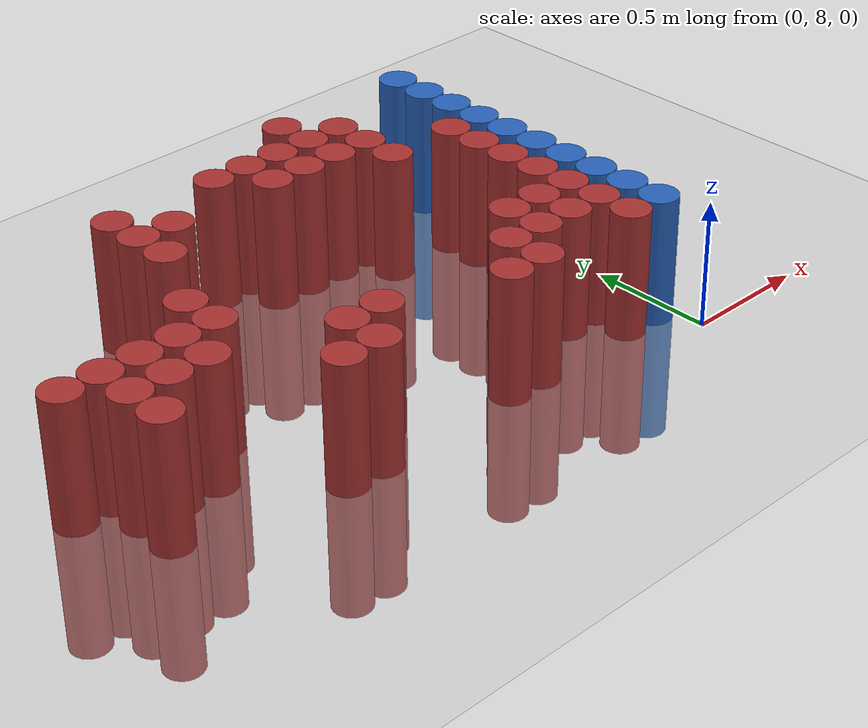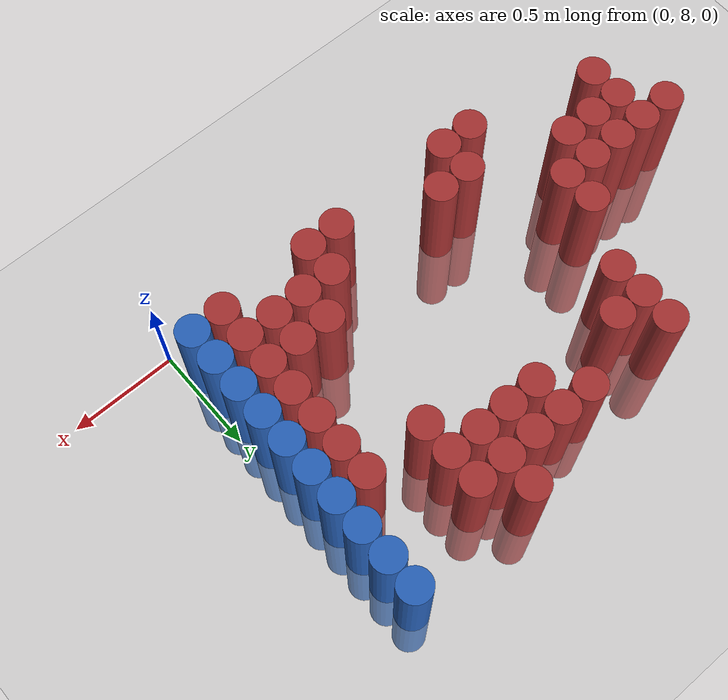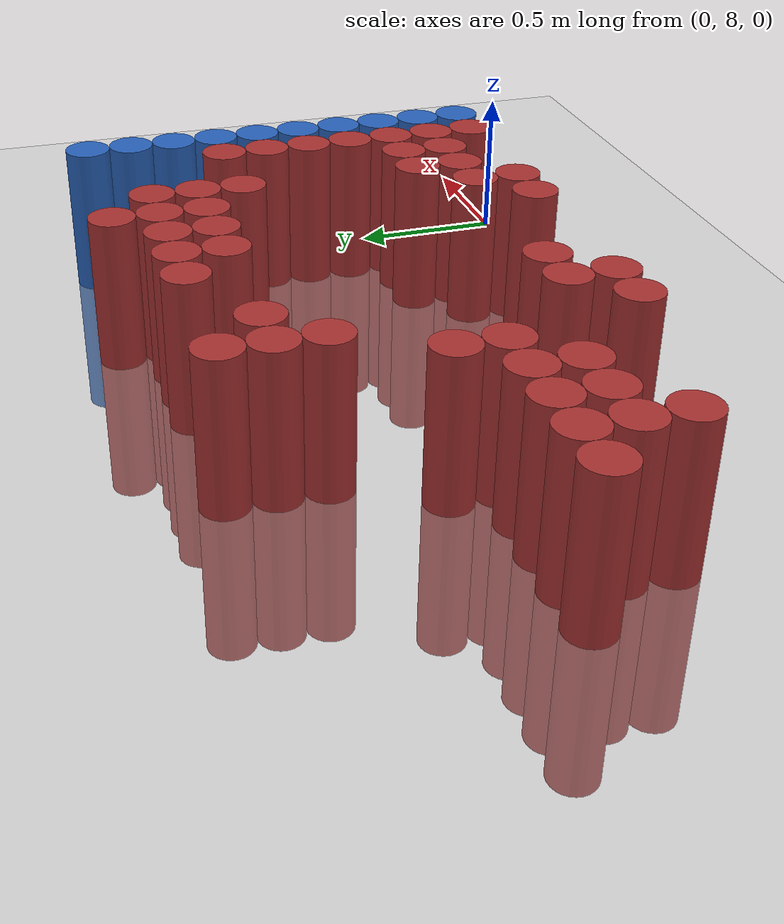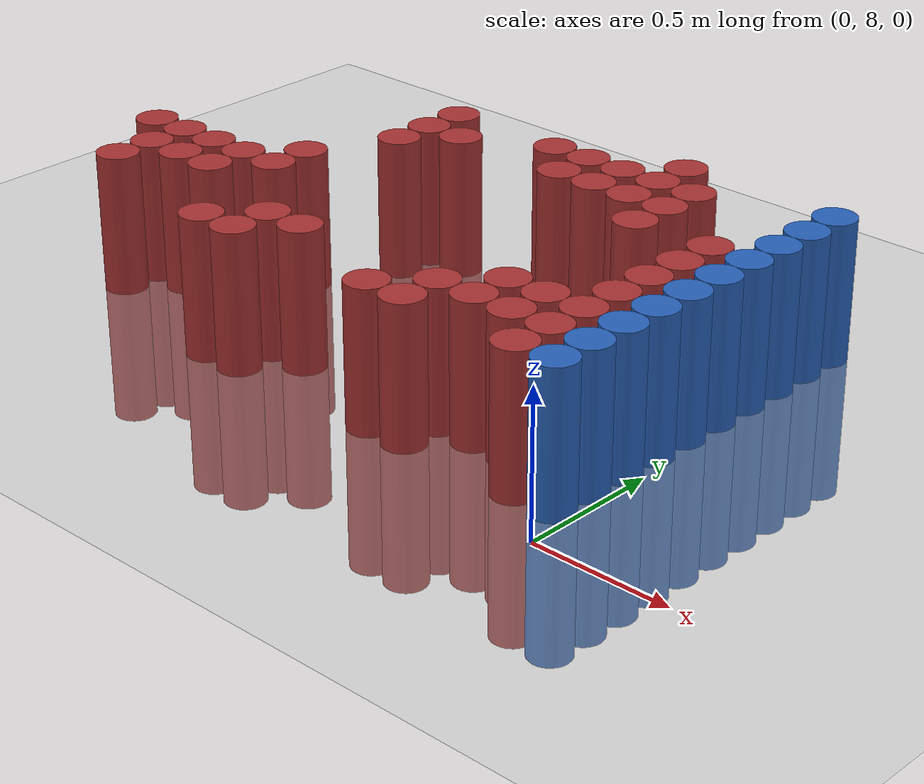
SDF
<sdf version="1.6">
 <world name="default">
  <model name="ground_plane">
   <static>1</static>
   <link name="link">
    <collision name="collision">
     <geometry><plane><normal>0 0 1</normal><size>100 100</size></plane></geometry>
     <surface><friction><ode><mu>100</mu><mu2>50</mu2></ode></friction></surface>
    </collision>
    <visual name="visual">
     <cast_shadows>0</cast_shadows>
     <geometry><plane><normal>0 0 1</normal><size>100 100</size></plane></geometry>
     <material>
      <script><uri>file://media/materials/scripts/gazebo.material</uri><name>Gazebo/Grey</name></script>
     </material>
    </visual>
   </link>
  </model>
  <model name="unit_cylinder_159">
   <static>1</static>
   <pose>-2.325000 8.625000 0.000000 0.000000 0.000000 0.000000</pose>
   <link name="link">
    <inertial>
     <mass>1</mass>
     <inertia><ixx>0.145833</ixx><ixy>0</ixy><ixz>0</ixz><iyy>0.145833</iyy><iyz>0</iyz><izz>0.125</izz></inertia>
    </inertial>
    <collision name="collision">
     <geometry><cylinder><radius>0.075000</radius><length>1</length></cylinder></geometry>
    </collision>
    <visual name="visual">
     <geometry><cylinder><radius>0.075000</radius><length>1</length></cylinder></geometry>
     <material>
      <ambient>0.648000 0.192000 0.192000 1</ambient>
      <diffuse>0.648000 0.192000 0.192000 1</diffuse>
     </material>
     <material>
      <script><name>Gazebo/Grey</name><uri>file://media/materials/scripts/gazebo.material</uri></script>
     </material>
    </visual>
   </link>
  </model>
  <model name="unit_cylinder_162">
   <static>1</static>
   <pose>-2.175000 8.325000 0.000000 0.000000 0.000000 0.000000</pose>
   <link name="link">
    <inertial>
     <mass>1</mass>
     <inertia><ixx>0.145833</ixx><ixy>0</ixy><ixz>0</ixz><iyy>0.145833</iyy><iyz>0</iyz><izz>0.125</izz></inertia>
    </inertial>
    <collision name="collision">
     <geometry><cylinder><radius>0.075000</radius><length>1</length></cylinder></geometry>
    </collision>
    <visual name="visual">
     <geometry><cylinder><radius>0.075000</radius><length>1</length></cylinder></geometry>
     <material>
      <ambient>0.648000 0.192000 0.192000 1</ambient>
      <diffuse>0.648000 0.192000 0.192000 1</diffuse>
     </material>
     <material>
      <script><name>Gazebo/Grey</name><uri>file://media/materials/scripts/gazebo.material</uri></script>
     </material>
    </visual>
   </link>
  </model>
  <model name="unit_cylinder_163">
   <static>1</static>
   <pose>-2.175000 8.475000 0.000000 0.000000 0.000000 0.000000</pose>
   <link name="link">
    <inertial>
     <mass>1</mass>
     <inertia><ixx>0.145833</ixx><ixy>0</ixy><ixz>0</ixz><iyy>0.145833</iyy><iyz>0</iyz><izz>0.125</izz></inertia>
    </inertial>
    <collision name="collision">
     <geometry><cylinder><radius>0.075000</radius><length>1</length></cylinder></geometry>
    </collision>
    <visual name="visual">
     <geometry><cylinder><radius>0.075000</radius><length>1</length></cylinder></geometry>
     <material>
      <ambient>0.648000 0.192000 0.192000 1</ambient>
      <diffuse>0.648000 0.192000 0.192000 1</diffuse>
     </material>
     <material>
      <script><name>Gazebo/Grey</name><uri>file://media/materials/scripts/gazebo.material</uri></script>
     </material>
    </visual>
   </link>
  </model>
  <model name="unit_cylinder_164">
   <static>1</static>
   <pose>-2.175000 8.625000 0.000000 0.000000 0.000000 0.000000</pose>
   <link name="link">
    <inertial>
     <mass>1</mass>
     <inertia><ixx>0.145833</ixx><ixy>0</ixy><ixz>0</ixz><iyy>0.145833</iyy><iyz>0</iyz><izz>0.125</izz></inertia>
    </inertial>
    <collision name="collision">
     <geometry><cylinder><radius>0.075000</radius><length>1</length></cylinder></geometry>
    </collision>
    <visual name="visual">
     <geometry><cylinder><radius>0.075000</radius><length>1</length></cylinder></geometry>
     <material>
      <ambient>0.648000 0.192000 0.192000 1</ambient>
      <diffuse>0.648000 0.192000 0.192000 1</diffuse>
     </material>
     <material>
      <script><name>Gazebo/Grey</name><uri>file://media/materials/scripts/gazebo.material</uri></script>
     </material>
    </visual>
   </link>
  </model>
  <model name="unit_cylinder_165">
   <static>1</static>
   <pose>-2.025000 8.475000 0.000000 0.000000 0.000000 0.000000</pose>
   <link name="link">
    <inertial>
     <mass>1</mass>
     <inertia><ixx>0.145833</ixx><ixy>0</ixy><ixz>0</ixz><iyy>0.145833</iyy><iyz>0</iyz><izz>0.125</izz></inertia>
    </inertial>
    <collision name="collision">
     <geometry><cylinder><radius>0.075000</radius><length>1</length></cylinder></geometry>
    </collision>
    <visual name="visual">
     <geometry><cylinder><radius>0.075000</radius><length>1</length></cylinder></geometry>
     <material>
      <ambient>0.648000 0.192000 0.192000 1</ambient>
      <diffuse>0.648000 0.192000 0.192000 1</diffuse>
     </material>
     <material>
      <script><name>Gazebo/Grey</name><uri>file://media/materials/scripts/gazebo.material</uri></script>
     </material>
    </visual>
   </link>
  </model>
  <model name="unit_cylinder_166">
   <static>1</static>
   <pose>-2.025000 8.625000 0.000000 0.000000 0.000000 0.000000</pose>
   <link name="link">
    <inertial>
     <mass>1</mass>
     <inertia><ixx>0.145833</ixx><ixy>0</ixy><ixz>0</ixz><iyy>0.145833</iyy><iyz>0</iyz><izz>0.125</izz></inertia>
    </inertial>
    <collision name="collision">
     <geometry><cylinder><radius>0.075000</radius><length>1</length></cylinder></geometry>
    </collision>
    <visual name="visual">
     <geometry><cylinder><radius>0.075000</radius><length>1</length></cylinder></geometry>
     <material>
      <ambient>0.648000 0.192000 0.192000 1</ambient>
      <diffuse>0.648000 0.192000 0.192000 1</diffuse>
     </material>
     <material>
      <script><name>Gazebo/Grey</name><uri>file://media/materials/scripts/gazebo.material</uri></script>
     </material>
    </visual>
   </link>
  </model>
  <model name="unit_cylinder_167">
   <static>1</static>
   <pose>-1.875000 8.475000 0.000000 0.000000 0.000000 0.000000</pose>
   <link name="link">
    <inertial>
     <mass>1</mass>
     <inertia><ixx>0.145833</ixx><ixy>0</ixy><ixz>0</ixz><iyy>0.145833</iyy><iyz>0</iyz><izz>0.125</izz></inertia>
    </inertial>
    <collision name="collision">
     <geometry><cylinder><radius>0.075000</radius><length>1</length></cylinder></geometry>
    </collision>
    <visual name="visual">
     <geometry><cylinder><radius>0.075000</radius><length>1</length></cylinder></geometry>
     <material>
      <ambient>0.648000 0.192000 0.192000 1</ambient>
      <diffuse>0.648000 0.192000 0.192000 1</diffuse>
     </material>
     <material>
      <script><name>Gazebo/Grey</name><uri>file://media/materials/scripts/gazebo.material</uri></script>
     </material>
    </visual>
   </link>
  </model>
  <model name="unit_cylinder_168">
   <static>1</static>
   <pose>-1.875000 8.625000 0.000000 0.000000 0.000000 0.000000</pose>
   <link name="link">
    <inertial>
     <mass>1</mass>
     <inertia><ixx>0.145833</ixx><ixy>0</ixy><ixz>0</ixz><iyy>0.145833</iyy><iyz>0</iyz><izz>0.125</izz></inertia>
    </inertial>
    <collision name="collision">
     <geometry><cylinder><radius>0.075000</radius><length>1</length></cylinder></geometry>
    </collision>
    <visual name="visual">
     <geometry><cylinder><radius>0.075000</radius><length>1</length></cylinder></geometry>
     <material>
      <ambient>0.648000 0.192000 0.192000 1</ambient>
      <diffuse>0.648000 0.192000 0.192000 1</diffuse>
     </material>
     <material>
      <script><name>Gazebo/Grey</name><uri>file://media/materials/scripts/gazebo.material</uri></script>
     </material>
    </visual>
   </link>
  </model>
  <model name="unit_cylinder_170">
   <static>1</static>
   <pose>-1.725000 8.625000 0.000000 0.000000 0.000000 0.000000</pose>
   <link name="link">
    <inertial>
     <mass>1</mass>
     <inertia><ixx>0.145833</ixx><ixy>0</ixy><ixz>0</ixz><iyy>0.145833</iyy><iyz>0</iyz><izz>0.125</izz></inertia>
    </inertial>
    <collision name="collision">
     <geometry><cylinder><radius>0.075000</radius><length>1</length></cylinder></geometry>
    </collision>
    <visual name="visual">
     <geometry><cylinder><radius>0.075000</radius><length>1</length></cylinder></geometry>
     <material>
      <ambient>0.648000 0.192000 0.192000 1</ambient>
      <diffuse>0.648000 0.192000 0.192000 1</diffuse>
     </material>
     <material>
      <script><name>Gazebo/Grey</name><uri>file://media/materials/scripts/gazebo.material</uri></script>
     </material>
    </visual>
   </link>
  </model>
  <model name="unit_cylinder_171">
   <static>1</static>
   <pose>-1.725000 8.775000 0.000000 0.000000 0.000000 0.000000</pose>
   <link name="link">
    <inertial>
     <mass>1</mass>
     <inertia><ixx>0.145833</ixx><ixy>0</ixy><ixz>0</ixz><iyy>0.145833</iyy><iyz>0</iyz><izz>0.125</izz></inertia>
    </inertial>
    <collision name="collision">
     <geometry><cylinder><radius>0.075000</radius><length>1</length></cylinder></geometry>
    </collision>
    <visual name="visual">
     <geometry><cylinder><radius>0.075000</radius><length>1</length></cylinder></geometry>
     <material>
      <ambient>0.648000 0.192000 0.192000 1</ambient>
      <diffuse>0.648000 0.192000 0.192000 1</diffuse>
     </material>
     <material>
      <script><name>Gazebo/Grey</name><uri>file://media/materials/scripts/gazebo.material</uri></script>
     </material>
    </visual>
   </link>
  </model>
  <model name="unit_cylinder_175">
   <static>1</static>
   <pose>-1.575000 8.175000 0.000000 0.000000 0.000000 0.000000</pose>
   <link name="link">
    <inertial>
     <mass>1</mass>
     <inertia><ixx>0.145833</ixx><ixy>0</ixy><ixz>0</ixz><iyy>0.145833</iyy><iyz>0</iyz><izz>0.125</izz></inertia>
    </inertial>
    <collision name="collision">
     <geometry><cylinder><radius>0.075000</radius><length>1</length></cylinder></geometry>
    </collision>
    <visual name="visual">
     <geometry><cylinder><radius>0.075000</radius><length>1</length></cylinder></geometry>
     <material>
      <ambient>0.648000 0.192000 0.192000 1</ambient>
      <diffuse>0.648000 0.192000 0.192000 1</diffuse>
     </material>
     <material>
      <script><name>Gazebo/Grey</name><uri>file://media/materials/scripts/gazebo.material</uri></script>
     </material>
    </visual>
   </link>
  </model>
  <model name="unit_cylinder_176">
   <static>1</static>
   <pose>-1.575000 9.075000 0.000000 0.000000 0.000000 0.000000</pose>
   <link name="link">
    <inertial>
     <mass>1</mass>
     <inertia><ixx>0.145833</ixx><ixy>0</ixy><ixz>0</ixz><iyy>0.145833</iyy><iyz>0</iyz><izz>0.125</izz></inertia>
    </inertial>
    <collision name="collision">
     <geometry><cylinder><radius>0.075000</radius><length>1</length></cylinder></geometry>
    </collision>
    <visual name="visual">
     <geometry><cylinder><radius>0.075000</radius><length>1</length></cylinder></geometry>
     <material>
      <ambient>0.648000 0.192000 0.192000 1</ambient>
      <diffuse>0.648000 0.192000 0.192000 1</diffuse>
     </material>
     <material>
      <script><name>Gazebo/Grey</name><uri>file://media/materials/scripts/gazebo.material</uri></script>
     </material>
    </visual>
   </link>
  </model>
  <model name="unit_cylinder_177">
   <static>1</static>
   <pose>-1.575000 9.225000 0.000000 0.000000 0.000000 0.000000</pose>
   <link name="link">
    <inertial>
     <mass>1</mass>
     <inertia><ixx>0.145833</ixx><ixy>0</ixy><ixz>0</ixz><iyy>0.145833</iyy><iyz>0</iyz><izz>0.125</izz></inertia>
    </inertial>
    <collision name="collision">
     <geometry><cylinder><radius>0.075000</radius><length>1</length></cylinder></geometry>
    </collision>
    <visual name="visual">
     <geometry><cylinder><radius>0.075000</radius><length>1</length></cylinder></geometry>
     <material>
      <ambient>0.648000 0.192000 0.192000 1</ambient>
      <diffuse>0.648000 0.192000 0.192000 1</diffuse>
     </material>
     <material>
      <script><name>Gazebo/Grey</name><uri>file://media/materials/scripts/gazebo.material</uri></script>
     </material>
    </visual>
   </link>
  </model>
  <model name="unit_cylinder_178">
   <static>1</static>
   <pose>-1.575000 9.375000 0.000000 0.000000 0.000000 0.000000</pose>
   <link name="link">
    <inertial>
     <mass>1</mass>
     <inertia><ixx>0.145833</ixx><ixy>0</ixy><ixz>0</ixz><iyy>0.145833</iyy><iyz>0</iyz><izz>0.125</izz></inertia>
    </inertial>
    <collision name="collision">
     <geometry><cylinder><radius>0.075000</radius><length>1</length></cylinder></geometry>
    </collision>
    <visual name="visual">
     <geometry><cylinder><radius>0.075000</radius><length>1</length></cylinder></geometry>
     <material>
      <ambient>0.648000 0.192000 0.192000 1</ambient>
      <diffuse>0.648000 0.192000 0.192000 1</diffuse>
     </material>
     <material>
      <script><name>Gazebo/Grey</name><uri>file://media/materials/scripts/gazebo.material</uri></script>
     </material>
    </visual>
   </link>
  </model>
  <model name="unit_cylinder_182">
   <static>1</static>
   <pose>-1.425000 8.175000 0.000000 0.000000 0.000000 0.000000</pose>
   <link name="link">
    <inertial>
     <mass>1</mass>
     <inertia><ixx>0.145833</ixx><ixy>0</ixy><ixz>0</ixz><iyy>0.145833</iyy><iyz>0</iyz><izz>0.125</izz></inertia>
    </inertial>
    <collision name="collision">
     <geometry><cylinder><radius>0.075000</radius><length>1</length></cylinder></geometry>
    </collision>
    <visual name="visual">
     <geometry><cylinder><radius>0.075000</radius><length>1</length></cylinder></geometry>
     <material>
      <ambient>0.648000 0.192000 0.192000 1</ambient>
      <diffuse>0.648000 0.192000 0.192000 1</diffuse>
     </material>
     <material>
      <script><name>Gazebo/Grey</name><uri>file://media/materials/scripts/gazebo.material</uri></script>
     </material>
    </visual>
   </link>
  </model>
  <model name="unit_cylinder_183">
   <static>1</static>
   <pose>-1.425000 8.325000 0.000000 0.000000 0.000000 0.000000</pose>
   <link name="link">
    <inertial>
     <mass>1</mass>
     <inertia><ixx>0.145833</ixx><ixy>0</ixy><ixz>0</ixz><iyy>0.145833</iyy><iyz>0</iyz><izz>0.125</izz></inertia>
    </inertial>
    <collision name="collision">
     <geometry><cylinder><radius>0.075000</radius><length>1</length></cylinder></geometry>
    </collision>
    <visual name="visual">
     <geometry><cylinder><radius>0.075000</radius><length>1</length></cylinder></geometry>
     <material>
      <ambient>0.648000 0.192000 0.192000 1</ambient>
      <diffuse>0.648000 0.192000 0.192000 1</diffuse>
     </material>
     <material>
      <script><name>Gazebo/Grey</name><uri>file://media/materials/scripts/gazebo.material</uri></script>
     </material>
    </visual>
   </link>
  </model>
  <model name="unit_cylinder_184">
   <static>1</static>
   <pose>-1.425000 9.225000 0.000000 0.000000 0.000000 0.000000</pose>
   <link name="link">
    <inertial>
     <mass>1</mass>
     <inertia><ixx>0.145833</ixx><ixy>0</ixy><ixz>0</ixz><iyy>0.145833</iyy><iyz>0</iyz><izz>0.125</izz></inertia>
    </inertial>
    <collision name="collision">
     <geometry><cylinder><radius>0.075000</radius><length>1</length></cylinder></geometry>
    </collision>
    <visual name="visual">
     <geometry><cylinder><radius>0.075000</radius><length>1</length></cylinder></geometry>
     <material>
      <ambient>0.648000 0.192000 0.192000 1</ambient>
      <diffuse>0.648000 0.192000 0.192000 1</diffuse>
     </material>
     <material>
      <script><name>Gazebo/Grey</name><uri>file://media/materials/scripts/gazebo.material</uri></script>
     </material>
    </visual>
   </link>
  </model>
  <model name="unit_cylinder_187">
   <static>1</static>
   <pose>-1.275000 8.325000 0.000000 0.000000 0.000000 0.000000</pose>
   <link name="link">
    <inertial>
     <mass>1</mass>
     <inertia><ixx>0.145833</ixx><ixy>0</ixy><ixz>0</ixz><iyy>0.145833</iyy><iyz>0</iyz><izz>0.125</izz></inertia>
    </inertial>
    <collision name="collision">
     <geometry><cylinder><radius>0.075000</radius><length>1</length></cylinder></geometry>
    </collision>
    <visual name="visual">
     <geometry><cylinder><radius>0.075000</radius><length>1</length></cylinder></geometry>
     <material>
      <ambient>0.648000 0.192000 0.192000 1</ambient>
      <diffuse>0.648000 0.192000 0.192000 1</diffuse>
     </material>
     <material>
      <script><name>Gazebo/Grey</name><uri>file://media/materials/scripts/gazebo.material</uri></script>
     </material>
    </visual>
   </link>
  </model>
  <model name="unit_cylinder_191">
   <static>1</static>
   <pose>-1.125000 9.375000 0.000000 0.000000 0.000000 0.000000</pose>
   <link name="link">
    <inertial>
     <mass>1</mass>
     <inertia><ixx>0.145833</ixx><ixy>0</ixy><ixz>0</ixz><iyy>0.145833</iyy><iyz>0</iyz><izz>0.125</izz></inertia>
    </inertial>
    <collision name="collision">
     <geometry><cylinder><radius>0.075000</radius><length>1</length></cylinder></geometry>
    </collision>
    <visual name="visual">
     <geometry><cylinder><radius>0.075000</radius><length>1</length></cylinder></geometry>
     <material>
      <ambient>0.648000 0.192000 0.192000 1</ambient>
      <diffuse>0.648000 0.192000 0.192000 1</diffuse>
     </material>
     <material>
      <script><name>Gazebo/Grey</name><uri>file://media/materials/scripts/gazebo.material</uri></script>
     </material>
    </visual>
   </link>
  </model>
  <model name="unit_cylinder_194">
   <static>1</static>
   <pose>-0.975000 9.225000 0.000000 0.000000 0.000000 0.000000</pose>
   <link name="link">
    <inertial>
     <mass>1</mass>
     <inertia><ixx>0.145833</ixx><ixy>0</ixy><ixz>0</ixz><iyy>0.145833</iyy><iyz>0</iyz><izz>0.125</izz></inertia>
    </inertial>
    <collision name="collision">
     <geometry><cylinder><radius>0.075000</radius><length>1</length></cylinder></geometry>
    </collision>
    <visual name="visual">
     <geometry><cylinder><radius>0.075000</radius><length>1</length></cylinder></geometry>
     <material>
      <ambient>0.648000 0.192000 0.192000 1</ambient>
      <diffuse>0.648000 0.192000 0.192000 1</diffuse>
     </material>
     <material>
      <script><name>Gazebo/Grey</name><uri>file://media/materials/scripts/gazebo.material</uri></script>
     </material>
    </visual>
   </link>
  </model>
  <model name="unit_cylinder_195">
   <static>1</static>
   <pose>-0.975000 9.375000 0.000000 0.000000 0.000000 0.000000</pose>
   <link name="link">
    <inertial>
     <mass>1</mass>
     <inertia><ixx>0.145833</ixx><ixy>0</ixy><ixz>0</ixz><iyy>0.145833</iyy><iyz>0</iyz><izz>0.125</izz></inertia>
    </inertial>
    <collision name="collision">
     <geometry><cylinder><radius>0.075000</radius><length>1</length></cylinder></geometry>
    </collision>
    <visual name="visual">
     <geometry><cylinder><radius>0.075000</radius><length>1</length></cylinder></geometry>
     <material>
      <ambient>0.648000 0.192000 0.192000 1</ambient>
      <diffuse>0.648000 0.192000 0.192000 1</diffuse>
     </material>
     <material>
      <script><name>Gazebo/Grey</name><uri>file://media/materials/scripts/gazebo.material</uri></script>
     </material>
    </visual>
   </link>
  </model>
  <model name="unit_cylinder_197">
   <static>1</static>
   <pose>-0.825000 8.175000 0.000000 0.000000 0.000000 0.000000</pose>
   <link name="link">
    <inertial>
     <mass>1</mass>
     <inertia><ixx>0.145833</ixx><ixy>0</ixy><ixz>0</ixz><iyy>0.145833</iyy><iyz>0</iyz><izz>0.125</izz></inertia>
    </inertial>
    <collision name="collision">
     <geometry><cylinder><radius>0.075000</radius><length>1</length></cylinder></geometry>
    </collision>
    <visual name="visual">
     <geometry><cylinder><radius>0.075000</radius><length>1</length></cylinder></geometry>
     <material>
      <ambient>0.648000 0.192000 0.192000 1</ambient>
      <diffuse>0.648000 0.192000 0.192000 1</diffuse>
     </material>
     <material>
      <script><name>Gazebo/Grey</name><uri>file://media/materials/scripts/gazebo.material</uri></script>
     </material>
    </visual>
   </link>
  </model>
  <model name="unit_cylinder_198">
   <static>1</static>
   <pose>-0.825000 9.225000 0.000000 0.000000 0.000000 0.000000</pose>
   <link name="link">
    <inertial>
     <mass>1</mass>
     <inertia><ixx>0.145833</ixx><ixy>0</ixy><ixz>0</ixz><iyy>0.145833</iyy><iyz>0</iyz><izz>0.125</izz></inertia>
    </inertial>
    <collision name="collision">
     <geometry><cylinder><radius>0.075000</radius><length>1</length></cylinder></geometry>
    </collision>
    <visual name="visual">
     <geometry><cylinder><radius>0.075000</radius><length>1</length></cylinder></geometry>
     <material>
      <ambient>0.648000 0.192000 0.192000 1</ambient>
      <diffuse>0.648000 0.192000 0.192000 1</diffuse>
     </material>
     <material>
      <script><name>Gazebo/Grey</name><uri>file://media/materials/scripts/gazebo.material</uri></script>
     </material>
    </visual>
   </link>
  </model>
  <model name="unit_cylinder_199">
   <static>1</static>
   <pose>-0.825000 9.375000 0.000000 0.000000 0.000000 0.000000</pose>
   <link name="link">
    <inertial>
     <mass>1</mass>
     <inertia><ixx>0.145833</ixx><ixy>0</ixy><ixz>0</ixz><iyy>0.145833</iyy><iyz>0</iyz><izz>0.125</izz></inertia>
    </inertial>
    <collision name="collision">
     <geometry><cylinder><radius>0.075000</radius><length>1</length></cylinder></geometry>
    </collision>
    <visual name="visual">
     <geometry><cylinder><radius>0.075000</radius><length>1</length></cylinder></geometry>
     <material>
      <ambient>0.648000 0.192000 0.192000 1</ambient>
      <diffuse>0.648000 0.192000 0.192000 1</diffuse>
     </material>
     <material>
      <script><name>Gazebo/Grey</name><uri>file://media/materials/scripts/gazebo.material</uri></script>
     </material>
    </visual>
   </link>
  </model>
  <model name="unit_cylinder_202">
   <static>1</static>
   <pose>-0.675000 8.175000 0.000000 0.000000 0.000000 0.000000</pose>
   <link name="link">
    <inertial>
     <mass>1</mass>
     <inertia><ixx>0.145833</ixx><ixy>0</ixy><ixz>0</ixz><iyy>0.145833</iyy><iyz>0</iyz><izz>0.125</izz></inertia>
    </inertial>
    <collision name="collision">
     <geometry><cylinder><radius>0.075000</radius><length>1</length></cylinder></geometry>
    </collision>
    <visual name="visual">
     <geometry><cylinder><radius>0.075000</radius><length>1</length></cylinder></geometry>
     <material>
      <ambient>0.648000 0.192000 0.192000 1</ambient>
      <diffuse>0.648000 0.192000 0.192000 1</diffuse>
     </material>
     <material>
      <script><name>Gazebo/Grey</name><uri>file://media/materials/scripts/gazebo.material</uri></script>
     </material>
    </visual>
   </link>
  </model>
  <model name="unit_cylinder_203">
   <static>1</static>
   <pose>-0.675000 8.325000 0.000000 0.000000 0.000000 0.000000</pose>
   <link name="link">
    <inertial>
     <mass>1</mass>
     <inertia><ixx>0.145833</ixx><ixy>0</ixy><ixz>0</ixz><iyy>0.145833</iyy><iyz>0</iyz><izz>0.125</izz></inertia>
    </inertial>
    <collision name="collision">
     <geometry><cylinder><radius>0.075000</radius><length>1</length></cylinder></geometry>
    </collision>
    <visual name="visual">
     <geometry><cylinder><radius>0.075000</radius><length>1</length></cylinder></geometry>
     <material>
      <ambient>0.648000 0.192000 0.192000 1</ambient>
      <diffuse>0.648000 0.192000 0.192000 1</diffuse>
     </material>
     <material>
      <script><name>Gazebo/Grey</name><uri>file://media/materials/scripts/gazebo.material</uri></script>
     </material>
    </visual>
   </link>
  </model>
  <model name="unit_cylinder_204">
   <static>1</static>
   <pose>-0.675000 9.225000 0.000000 0.000000 0.000000 0.000000</pose>
   <link name="link">
    <inertial>
     <mass>1</mass>
     <inertia><ixx>0.145833</ixx><ixy>0</ixy><ixz>0</ixz><iyy>0.145833</iyy><iyz>0</iyz><izz>0.125</izz></inertia>
    </inertial>
    <collision name="collision">
     <geometry><cylinder><radius>0.075000</radius><length>1</length></cylinder></geometry>
    </collision>
    <visual name="visual">
     <geometry><cylinder><radius>0.075000</radius><length>1</length></cylinder></geometry>
     <material>
      <ambient>0.648000 0.192000 0.192000 1</ambient>
      <diffuse>0.648000 0.192000 0.192000 1</diffuse>
     </material>
     <material>
      <script><name>Gazebo/Grey</name><uri>file://media/materials/scripts/gazebo.material</uri></script>
     </material>
    </visual>
   </link>
  </model>
  <model name="unit_cylinder_205">
   <static>1</static>
   <pose>-0.675000 9.375000 0.000000 0.000000 0.000000 0.000000</pose>
   <link name="link">
    <inertial>
     <mass>1</mass>
     <inertia><ixx>0.145833</ixx><ixy>0</ixy><ixz>0</ixz><iyy>0.145833</iyy><iyz>0</iyz><izz>0.125</izz></inertia>
    </inertial>
    <collision name="collision">
     <geometry><cylinder><radius>0.075000</radius><length>1</length></cylinder></geometry>
    </collision>
    <visual name="visual">
     <geometry><cylinder><radius>0.075000</radius><length>1</length></cylinder></geometry>
     <material>
      <ambient>0.648000 0.192000 0.192000 1</ambient>
      <diffuse>0.648000 0.192000 0.192000 1</diffuse>
     </material>
     <material>
      <script><name>Gazebo/Grey</name><uri>file://media/materials/scripts/gazebo.material</uri></script>
     </material>
    </visual>
   </link>
  </model>
  <model name="unit_cylinder_206">
   <static>1</static>
   <pose>-0.675000 9.525000 0.000000 0.000000 0.000000 0.000000</pose>
   <link name="link">
    <inertial>
     <mass>1</mass>
     <inertia><ixx>0.145833</ixx><ixy>0</ixy><ixz>0</ixz><iyy>0.145833</iyy><iyz>0</iyz><izz>0.125</izz></inertia>
    </inertial>
    <collision name="collision">
     <geometry><cylinder><radius>0.075000</radius><length>1</length></cylinder></geometry>
    </collision>
    <visual name="visual">
     <geometry><cylinder><radius>0.075000</radius><length>1</length></cylinder></geometry>
     <material>
      <ambient>0.648000 0.192000 0.192000 1</ambient>
      <diffuse>0.648000 0.192000 0.192000 1</diffuse>
     </material>
     <material>
      <script><name>Gazebo/Grey</name><uri>file://media/materials/scripts/gazebo.material</uri></script>
     </material>
    </visual>
   </link>
  </model>
  <model name="unit_cylinder_210">
   <static>1</static>
   <pose>-0.525000 8.325000 0.000000 0.000000 0.000000 0.000000</pose>
   <link name="link">
    <inertial>
     <mass>1</mass>
     <inertia><ixx>0.145833</ixx><ixy>0</ixy><ixz>0</ixz><iyy>0.145833</iyy><iyz>0</iyz><izz>0.125</izz></inertia>
    </inertial>
    <collision name="collision">
     <geometry><cylinder><radius>0.075000</radius><length>1</length></cylinder></geometry>
    </collision>
    <visual name="visual">
     <geometry><cylinder><radius>0.075000</radius><length>1</length></cylinder></geometry>
     <material>
      <ambient>0.648000 0.192000 0.192000 1</ambient>
      <diffuse>0.648000 0.192000 0.192000 1</diffuse>
     </material>
     <material>
      <script><name>Gazebo/Grey</name><uri>file://media/materials/scripts/gazebo.material</uri></script>
     </material>
    </visual>
   </link>
  </model>
  <model name="unit_cylinder_211">
   <static>1</static>
   <pose>-0.525000 8.475000 0.000000 0.000000 0.000000 0.000000</pose>
   <link name="link">
    <inertial>
     <mass>1</mass>
     <inertia><ixx>0.145833</ixx><ixy>0</ixy><ixz>0</ixz><iyy>0.145833</iyy><iyz>0</iyz><izz>0.125</izz></inertia>
    </inertial>
    <collision name="collision">
     <geometry><cylinder><radius>0.075000</radius><length>1</length></cylinder></geometry>
    </collision>
    <visual name="visual">
     <geometry><cylinder><radius>0.075000</radius><length>1</length></cylinder></geometry>
     <material>
      <ambient>0.648000 0.192000 0.192000 1</ambient>
      <diffuse>0.648000 0.192000 0.192000 1</diffuse>
     </material>
     <material>
      <script><name>Gazebo/Grey</name><uri>file://media/materials/scripts/gazebo.material</uri></script>
     </material>
    </visual>
   </link>
  </model>
  <model name="unit_cylinder_212">
   <static>1</static>
   <pose>-0.525000 9.075000 0.000000 0.000000 0.000000 0.000000</pose>
   <link name="link">
    <inertial>
     <mass>1</mass>
     <inertia><ixx>0.145833</ixx><ixy>0</ixy><ixz>0</ixz><iyy>0.145833</iyy><iyz>0</iyz><izz>0.125</izz></inertia>
    </inertial>
    <collision name="collision">
     <geometry><cylinder><radius>0.075000</radius><length>1</length></cylinder></geometry>
    </collision>
    <visual name="visual">
     <geometry><cylinder><radius>0.075000</radius><length>1</length></cylinder></geometry>
     <material>
      <ambient>0.648000 0.192000 0.192000 1</ambient>
      <diffuse>0.648000 0.192000 0.192000 1</diffuse>
     </material>
     <material>
      <script><name>Gazebo/Grey</name><uri>file://media/materials/scripts/gazebo.material</uri></script>
     </material>
    </visual>
   </link>
  </model>
  <model name="unit_cylinder_213">
   <static>1</static>
   <pose>-0.525000 9.225000 0.000000 0.000000 0.000000 0.000000</pose>
   <link name="link">
    <inertial>
     <mass>1</mass>
     <inertia><ixx>0.145833</ixx><ixy>0</ixy><ixz>0</ixz><iyy>0.145833</iyy><iyz>0</iyz><izz>0.125</izz></inertia>
    </inertial>
    <collision name="collision">
     <geometry><cylinder><radius>0.075000</radius><length>1</length></cylinder></geometry>
    </collision>
    <visual name="visual">
     <geometry><cylinder><radius>0.075000</radius><length>1</length></cylinder></geometry>
     <material>
      <ambient>0.648000 0.192000 0.192000 1</ambient>
      <diffuse>0.648000 0.192000 0.192000 1</diffuse>
     </material>
     <material>
      <script><name>Gazebo/Grey</name><uri>file://media/materials/scripts/gazebo.material</uri></script>
     </material>
    </visual>
   </link>
  </model>
  <model name="unit_cylinder_214">
   <static>1</static>
   <pose>-0.525000 9.375000 0.000000 0.000000 0.000000 0.000000</pose>
   <link name="link">
    <inertial>
     <mass>1</mass>
     <inertia><ixx>0.145833</ixx><ixy>0</ixy><ixz>0</ixz><iyy>0.145833</iyy><iyz>0</iyz><izz>0.125</izz></inertia>
    </inertial>
    <collision name="collision">
     <geometry><cylinder><radius>0.075000</radius><length>1</length></cylinder></geometry>
    </collision>
    <visual name="visual">
     <geometry><cylinder><radius>0.075000</radius><length>1</length></cylinder></geometry>
     <material>
      <ambient>0.648000 0.192000 0.192000 1</ambient>
      <diffuse>0.648000 0.192000 0.192000 1</diffuse>
     </material>
     <material>
      <script><name>Gazebo/Grey</name><uri>file://media/materials/scripts/gazebo.material</uri></script>
     </material>
    </visual>
   </link>
  </model>
  <model name="unit_cylinder_218">
   <static>1</static>
   <pose>-0.375000 8.325000 0.000000 0.000000 0.000000 0.000000</pose>
   <link name="link">
    <inertial>
     <mass>1</mass>
     <inertia><ixx>0.145833</ixx><ixy>0</ixy><ixz>0</ixz><iyy>0.145833</iyy><iyz>0</iyz><izz>0.125</izz></inertia>
    </inertial>
    <collision name="collision">
     <geometry><cylinder><radius>0.075000</radius><length>1</length></cylinder></geometry>
    </collision>
    <visual name="visual">
     <geometry><cylinder><radius>0.075000</radius><length>1</length></cylinder></geometry>
     <material>
      <ambient>0.648000 0.192000 0.192000 1</ambient>
      <diffuse>0.648000 0.192000 0.192000 1</diffuse>
     </material>
     <material>
      <script><name>Gazebo/Grey</name><uri>file://media/materials/scripts/gazebo.material</uri></script>
     </material>
    </visual>
   </link>
  </model>
  <model name="unit_cylinder_219">
   <static>1</static>
   <pose>-0.375000 8.475000 0.000000 0.000000 0.000000 0.000000</pose>
   <link name="link">
    <inertial>
     <mass>1</mass>
     <inertia><ixx>0.145833</ixx><ixy>0</ixy><ixz>0</ixz><iyy>0.145833</iyy><iyz>0</iyz><izz>0.125</izz></inertia>
    </inertial>
    <collision name="collision">
     <geometry><cylinder><radius>0.075000</radius><length>1</length></cylinder></geometry>
    </collision>
    <visual name="visual">
     <geometry><cylinder><radius>0.075000</radius><length>1</length></cylinder></geometry>
     <material>
      <ambient>0.648000 0.192000 0.192000 1</ambient>
      <diffuse>0.648000 0.192000 0.192000 1</diffuse>
     </material>
     <material>
      <script><name>Gazebo/Grey</name><uri>file://media/materials/scripts/gazebo.material</uri></script>
     </material>
    </visual>
   </link>
  </model>
  <model name="unit_cylinder_227">
   <static>1</static>
   <pose>-0.225000 8.175000 0.000000 0.000000 0.000000 0.000000</pose>
   <link name="link">
    <inertial>
     <mass>1</mass>
     <inertia><ixx>0.145833</ixx><ixy>0</ixy><ixz>0</ixz><iyy>0.145833</iyy><iyz>0</iyz><izz>0.125</izz></inertia>
    </inertial>
    <collision name="collision">
     <geometry><cylinder><radius>0.075000</radius><length>1</length></cylinder></geometry>
    </collision>
    <visual name="visual">
     <geometry><cylinder><radius>0.075000</radius><length>1</length></cylinder></geometry>
     <material>
      <ambient>0.648000 0.192000 0.192000 1</ambient>
      <diffuse>0.648000 0.192000 0.192000 1</diffuse>
     </material>
     <material>
      <script><name>Gazebo/Grey</name><uri>file://media/materials/scripts/gazebo.material</uri></script>
     </material>
    </visual>
   </link>
  </model>
  <model name="unit_cylinder_228">
   <static>1</static>
   <pose>-0.225000 8.325000 0.000000 0.000000 0.000000 0.000000</pose>
   <link name="link">
    <inertial>
     <mass>1</mass>
     <inertia><ixx>0.145833</ixx><ixy>0</ixy><ixz>0</ixz><iyy>0.145833</iyy><iyz>0</iyz><izz>0.125</izz></inertia>
    </inertial>
    <collision name="collision">
     <geometry><cylinder><radius>0.075000</radius><length>1</length></cylinder></geometry>
    </collision>
    <visual name="visual">
     <geometry><cylinder><radius>0.075000</radius><length>1</length></cylinder></geometry>
     <material>
      <ambient>0.648000 0.192000 0.192000 1</ambient>
      <diffuse>0.648000 0.192000 0.192000 1</diffuse>
     </material>
     <material>
      <script><name>Gazebo/Grey</name><uri>file://media/materials/scripts/gazebo.material</uri></script>
     </material>
    </visual>
   </link>
  </model>
  <model name="unit_cylinder_229">
   <static>1</static>
   <pose>-0.225000 8.475000 0.000000 0.000000 0.000000 0.000000</pose>
   <link name="link">
    <inertial>
     <mass>1</mass>
     <inertia><ixx>0.145833</ixx><ixy>0</ixy><ixz>0</ixz><iyy>0.145833</iyy><iyz>0</iyz><izz>0.125</izz></inertia>
    </inertial>
    <collision name="collision">
     <geometry><cylinder><radius>0.075000</radius><length>1</length></cylinder></geometry>
    </collision>
    <visual name="visual">
     <geometry><cylinder><radius>0.075000</radius><length>1</length></cylinder></geometry>
     <material>
      <ambient>0.648000 0.192000 0.192000 1</ambient>
      <diffuse>0.648000 0.192000 0.192000 1</diffuse>
     </material>
     <material>
      <script><name>Gazebo/Grey</name><uri>file://media/materials/scripts/gazebo.material</uri></script>
     </material>
    </visual>
   </link>
  </model>
  <model name="unit_cylinder_230">
   <static>1</static>
   <pose>-0.225000 8.625000 0.000000 0.000000 0.000000 0.000000</pose>
   <link name="link">
    <inertial>
     <mass>1</mass>
     <inertia><ixx>0.145833</ixx><ixy>0</ixy><ixz>0</ixz><iyy>0.145833</iyy><iyz>0</iyz><izz>0.125</izz></inertia>
    </inertial>
    <collision name="collision">
     <geometry><cylinder><radius>0.075000</radius><length>1</length></cylinder></geometry>
    </collision>
    <visual name="visual">
     <geometry><cylinder><radius>0.075000</radius><length>1</length></cylinder></geometry>
     <material>
      <ambient>0.648000 0.192000 0.192000 1</ambient>
      <diffuse>0.648000 0.192000 0.192000 1</diffuse>
     </material>
     <material>
      <script><name>Gazebo/Grey</name><uri>file://media/materials/scripts/gazebo.material</uri></script>
     </material>
    </visual>
   </link>
  </model>
  <model name="unit_cylinder_231">
   <static>1</static>
   <pose>-0.225000 8.775000 0.000000 0.000000 0.000000 0.000000</pose>
   <link name="link">
    <inertial>
     <mass>1</mass>
     <inertia><ixx>0.145833</ixx><ixy>0</ixy><ixz>0</ixz><iyy>0.145833</iyy><iyz>0</iyz><izz>0.125</izz></inertia>
    </inertial>
    <collision name="collision">
     <geometry><cylinder><radius>0.075000</radius><length>1</length></cylinder></geometry>
    </collision>
    <visual name="visual">
     <geometry><cylinder><radius>0.075000</radius><length>1</length></cylinder></geometry>
     <material>
      <ambient>0.648000 0.192000 0.192000 1</ambient>
      <diffuse>0.648000 0.192000 0.192000 1</diffuse>
     </material>
     <material>
      <script><name>Gazebo/Grey</name><uri>file://media/materials/scripts/gazebo.material</uri></script>
     </material>
    </visual>
   </link>
  </model>
  <model name="unit_cylinder_232">
   <static>1</static>
   <pose>-0.225000 8.925000 0.000000 0.000000 0.000000 0.000000</pose>
   <link name="link">
    <inertial>
     <mass>1</mass>
     <inertia><ixx>0.145833</ixx><ixy>0</ixy><ixz>0</ixz><iyy>0.145833</iyy><iyz>0</iyz><izz>0.125</izz></inertia>
    </inertial>
    <collision name="collision">
     <geometry><cylinder><radius>0.075000</radius><length>1</length></cylinder></geometry>
    </collision>
    <visual name="visual">
     <geometry><cylinder><radius>0.075000</radius><length>1</length></cylinder></geometry>
     <material>
      <ambient>0.648000 0.192000 0.192000 1</ambient>
      <diffuse>0.648000 0.192000 0.192000 1</diffuse>
     </material>
     <material>
      <script><name>Gazebo/Grey</name><uri>file://media/materials/scripts/gazebo.material</uri></script>
     </material>
    </visual>
   </link>
  </model>
  <model name="unit_cylinder_233">
   <static>1</static>
   <pose>-0.225000 9.075000 0.000000 0.000000 0.000000 0.000000</pose>
   <link name="link">
    <inertial>
     <mass>1</mass>
     <inertia><ixx>0.145833</ixx><ixy>0</ixy><ixz>0</ixz><iyy>0.145833</iyy><iyz>0</iyz><izz>0.125</izz></inertia>
    </inertial>
    <collision name="collision">
     <geometry><cylinder><radius>0.075000</radius><length>1</length></cylinder></geometry>
    </collision>
    <visual name="visual">
     <geometry><cylinder><radius>0.075000</radius><length>1</length></cylinder></geometry>
     <material>
      <ambient>0.648000 0.192000 0.192000 1</ambient>
      <diffuse>0.648000 0.192000 0.192000 1</diffuse>
     </material>
     <material>
      <script><name>Gazebo/Grey</name><uri>file://media/materials/scripts/gazebo.material</uri></script>
     </material>
    </visual>
   </link>
  </model>
  <model name="unit_cylinder_254">
   <static>1</static>
   <pose>-0.075000 8.175000 0.000000 0.000000 0.000000 0.000000</pose>
   <link name="link">
    <inertial>
     <mass>1</mass>
     <inertia><ixx>0.145833</ixx><ixy>0</ixy><ixz>0</ixz><iyy>0.145833</iyy><iyz>0</iyz><izz>0.125</izz></inertia>
    </inertial>
    <collision name="collision">
     <geometry><cylinder><radius>0.075000</radius><length>1</length></cylinder></geometry>
    </collision>
    <visual name="visual">
     <geometry><cylinder><radius>0.075000</radius><length>1</length></cylinder></geometry>
     <material>
      <ambient>0.152000 0.379000 0.720000 1</ambient>
      <diffuse>0.152000 0.379000 0.720000 1</diffuse>
     </material>
     <material>
      <script><name>Gazebo/Grey</name><uri>file://media/materials/scripts/gazebo.material</uri></script>
     </material>
    </visual>
   </link>
  </model>
  <model name="unit_cylinder_255">
   <static>1</static>
   <pose>-0.075000 8.325000 0.000000 0.000000 0.000000 0.000000</pose>
   <link name="link">
    <inertial>
     <mass>1</mass>
     <inertia><ixx>0.145833</ixx><ixy>0</ixy><ixz>0</ixz><iyy>0.145833</iyy><iyz>0</iyz><izz>0.125</izz></inertia>
    </inertial>
    <collision name="collision">
     <geometry><cylinder><radius>0.075000</radius><length>1</length></cylinder></geometry>
    </collision>
    <visual name="visual">
     <geometry><cylinder><radius>0.075000</radius><length>1</length></cylinder></geometry>
     <material>
      <ambient>0.152000 0.379000 0.720000 1</ambient>
      <diffuse>0.152000 0.379000 0.720000 1</diffuse>
     </material>
     <material>
      <script><name>Gazebo/Grey</name><uri>file://media/materials/scripts/gazebo.material</uri></script>
     </material>
    </visual>
   </link>
  </model>
  <model name="unit_cylinder_256">
   <static>1</static>
   <pose>-0.075000 8.475000 0.000000 0.000000 0.000000 0.000000</pose>
   <link name="link">
    <inertial>
     <mass>1</mass>
     <inertia><ixx>0.145833</ixx><ixy>0</ixy><ixz>0</ixz><iyy>0.145833</iyy><iyz>0</iyz><izz>0.125</izz></inertia>
    </inertial>
    <collision name="collision">
     <geometry><cylinder><radius>0.075000</radius><length>1</length></cylinder></geometry>
    </collision>
    <visual name="visual">
     <geometry><cylinder><radius>0.075000</radius><length>1</length></cylinder></geometry>
     <material>
      <ambient>0.152000 0.379000 0.720000 1</ambient>
      <diffuse>0.152000 0.379000 0.720000 1</diffuse>
     </material>
     <material>
      <script><name>Gazebo/Grey</name><uri>file://media/materials/scripts/gazebo.material</uri></script>
     </material>
    </visual>
   </link>
  </model>
  <model name="unit_cylinder_257">
   <static>1</static>
   <pose>-0.075000 8.625000 0.000000 0.000000 0.000000 0.000000</pose>
   <link name="link">
    <inertial>
     <mass>1</mass>
     <inertia><ixx>0.145833</ixx><ixy>0</ixy><ixz>0</ixz><iyy>0.145833</iyy><iyz>0</iyz><izz>0.125</izz></inertia>
    </inertial>
    <collision name="collision">
     <geometry><cylinder><radius>0.075000</radius><length>1</length></cylinder></geometry>
    </collision>
    <visual name="visual">
     <geometry><cylinder><radius>0.075000</radius><length>1</length></cylinder></geometry>
     <material>
      <ambient>0.152000 0.379000 0.720000 1</ambient>
      <diffuse>0.152000 0.379000 0.720000 1</diffuse>
     </material>
     <material>
      <script><name>Gazebo/Grey</name><uri>file://media/materials/scripts/gazebo.material</uri></script>
     </material>
    </visual>
   </link>
  </model>
  <model name="unit_cylinder_258">
   <static>1</static>
   <pose>-0.075000 8.775000 0.000000 0.000000 0.000000 0.000000</pose>
   <link name="link">
    <inertial>
     <mass>1</mass>
     <inertia><ixx>0.145833</ixx><ixy>0</ixy><ixz>0</ixz><iyy>0.145833</iyy><iyz>0</iyz><izz>0.125</izz></inertia>
    </inertial>
    <collision name="collision">
     <geometry><cylinder><radius>0.075000</radius><length>1</length></cylinder></geometry>
    </collision>
    <visual name="visual">
     <geometry><cylinder><radius>0.075000</radius><length>1</length></cylinder></geometry>
     <material>
      <ambient>0.152000 0.379000 0.720000 1</ambient>
      <diffuse>0.152000 0.379000 0.720000 1</diffuse>
     </material>
     <material>
      <script><name>Gazebo/Grey</name><uri>file://media/materials/scripts/gazebo.material</uri></script>
     </material>
    </visual>
   </link>
  </model>
  <model name="unit_cylinder_259">
   <static>1</static>
   <pose>-0.075000 8.925000 0.000000 0.000000 0.000000 0.000000</pose>
   <link name="link">
    <inertial>
     <mass>1</mass>
     <inertia><ixx>0.145833</ixx><ixy>0</ixy><ixz>0</ixz><iyy>0.145833</iyy><iyz>0</iyz><izz>0.125</izz></inertia>
    </inertial>
    <collision name="collision">
     <geometry><cylinder><radius>0.075000</radius><length>1</length></cylinder></geometry>
    </collision>
    <visual name="visual">
     <geometry><cylinder><radius>0.075000</radius><length>1</length></cylinder></geometry>
     <material>
      <ambient>0.152000 0.379000 0.720000 1</ambient>
      <diffuse>0.152000 0.379000 0.720000 1</diffuse>
     </material>
     <material>
      <script><name>Gazebo/Grey</name><uri>file://media/materials/scripts/gazebo.material</uri></script>
     </material>
    </visual>
   </link>
  </model>
  <model name="unit_cylinder_260">
   <static>1</static>
   <pose>-0.075000 9.075000 0.000000 0.000000 0.000000 0.000000</pose>
   <link name="link">
    <inertial>
     <mass>1</mass>
     <inertia><ixx>0.145833</ixx><ixy>0</ixy><ixz>0</ixz><iyy>0.145833</iyy><iyz>0</iyz><izz>0.125</izz></inertia>
    </inertial>
    <collision name="collision">
     <geometry><cylinder><radius>0.075000</radius><length>1</length></cylinder></geometry>
    </collision>
    <visual name="visual">
     <geometry><cylinder><radius>0.075000</radius><length>1</length></cylinder></geometry>
     <material>
      <ambient>0.152000 0.379000 0.720000 1</ambient>
      <diffuse>0.152000 0.379000 0.720000 1</diffuse>
     </material>
     <material>
      <script><name>Gazebo/Grey</name><uri>file://media/materials/scripts/gazebo.material</uri></script>
     </material>
    </visual>
   </link>
  </model>
  <model name="unit_cylinder_261">
   <static>1</static>
   <pose>-0.075000 9.225000 0.000000 0.000000 0.000000 0.000000</pose>
   <link name="link">
    <inertial>
     <mass>1</mass>
     <inertia><ixx>0.145833</ixx><ixy>0</ixy><ixz>0</ixz><iyy>0.145833</iyy><iyz>0</iyz><izz>0.125</izz></inertia>
    </inertial>
    <collision name="collision">
     <geometry><cylinder><radius>0.075000</radius><length>1</length></cylinder></geometry>
    </collision>
    <visual name="visual">
     <geometry><cylinder><radius>0.075000</radius><length>1</length></cylinder></geometry>
     <material>
      <ambient>0.152000 0.379000 0.720000 1</ambient>
      <diffuse>0.152000 0.379000 0.720000 1</diffuse>
     </material>
     <material>
      <script><name>Gazebo/Grey</name><uri>file://media/materials/scripts/gazebo.material</uri></script>
     </material>
    </visual>
   </link>
  </model>
  <model name="unit_cylinder_262">
   <static>1</static>
   <pose>-0.075000 9.375000 0.000000 0.000000 0.000000 0.000000</pose>
   <link name="link">
    <inertial>
     <mass>1</mass>
     <inertia><ixx>0.145833</ixx><ixy>0</ixy><ixz>0</ixz><iyy>0.145833</iyy><iyz>0</iyz><izz>0.125</izz></inertia>
    </inertial>
    <collision name="collision">
     <geometry><cylinder><radius>0.075000</radius><length>1</length></cylinder></geometry>
    </collision>
    <visual name="visual">
     <geometry><cylinder><radius>0.075000</radius><length>1</length></cylinder></geometry>
     <material>
      <ambient>0.152000 0.379000 0.720000 1</ambient>
      <diffuse>0.152000 0.379000 0.720000 1</diffuse>
     </material>
     <material>
      <script><name>Gazebo/Grey</name><uri>file://media/materials/scripts/gazebo.material</uri></script>
     </material>
    </visual>
   </link>
  </model>
  <model name="unit_cylinder_263">
   <static>1</static>
   <pose>-0.075000 9.525000 0.000000 0.000000 0.000000 0.000000</pose>
   <link name="link">
    <inertial>
     <mass>1</mass>
     <inertia><ixx>0.145833</ixx><ixy>0</ixy><ixz>0</ixz><iyy>0.145833</iyy><iyz>0</iyz><izz>0.125</izz></inertia>
    </inertial>
    <collision name="collision">
     <geometry><cylinder><radius>0.075000</radius><length>1</length></cylinder></geometry>
    </collision>
    <visual name="visual">
     <geometry><cylinder><radius>0.075000</radius><length>1</length></cylinder></geometry>
     <material>
      <ambient>0.152000 0.379000 0.720000 1</ambient>
      <diffuse>0.152000 0.379000 0.720000 1</diffuse>
     </material>
     <material>
      <script><name>Gazebo/Grey</name><uri>file://media/materials/scripts/gazebo.material</uri></script>
     </material>
    </visual>
   </link>
  </model>
 </world>
</sdf>
